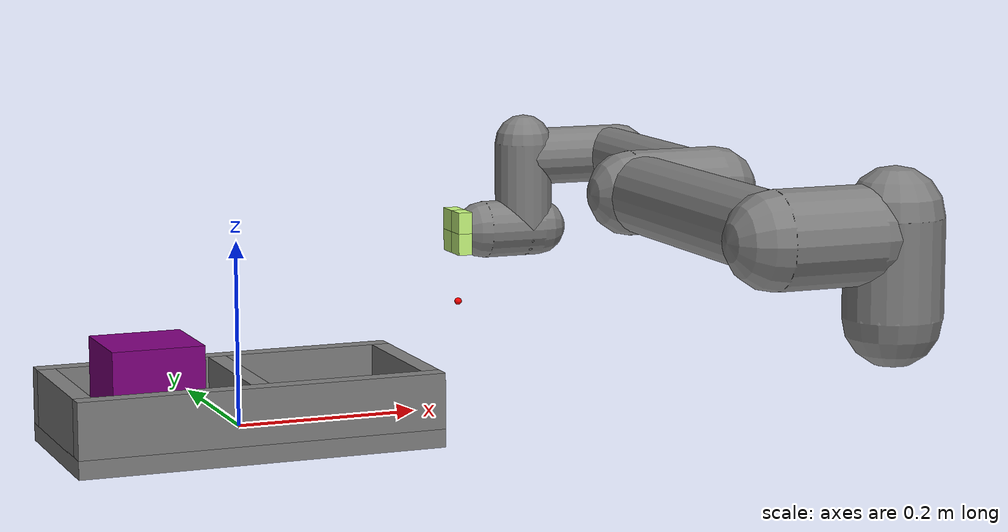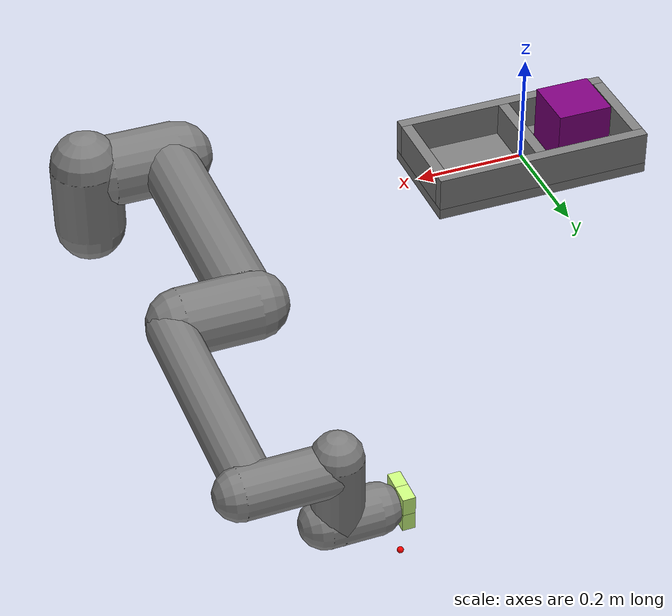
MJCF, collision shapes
<mujoco model="Active adhesion example">
  <!-- Adding some fluid viscosity to prevent the hanging components from jiggling too much -->
    <compiler angle="radian" meshdir="assets" autolimits="true"/>

  <option integrator="implicitfast"/>

  <default>
    <default class="ur5e">
      <material specular="0.5" shininess="0.25"/>
      <joint axis="0 1 0" range="-6.28319 6.28319" armature="0.1"/>
      <general gaintype="fixed" biastype="affine" ctrlrange="-6.2831 6.2831" gainprm="2000" biasprm="0 -2000 -400"
        forcerange="-150 150"/>
      <default class="size3">
        <default class="size3_limited">
          <joint range="-3.1415 3.1415"/>
          <general ctrlrange="-3.1415 3.1415"/>
        </default>
      </default>
      <default class="size1">
        <general gainprm="500" biasprm="0 -500 -100" forcerange="-28 28"/>
      </default>
      <default class="visual">
        <geom type="mesh" contype="0" conaffinity="0" group="2"/>
      </default>
      <default class="collision">
        <geom type="capsule" group="3"/>
        <default class="eef_collision">
          <geom type="cylinder"/>
        </default>
      </default>
      <site size="0.001" rgba="0.5 0.5 0.5 0.3" group="4"/>
    </default>
  </default>
  <asset>
    <material class="ur5e" name="black" rgba="0.033 0.033 0.033 1"/>
    <material class="ur5e" name="jointgray" rgba="0.278 0.278 0.278 1"/>
    <material class="ur5e" name="linkgray" rgba="0.82 0.82 0.82 1"/>
    <material class="ur5e" name="urblue" rgba="0.49 0.678 0.8 1"/>

    <mesh file="base_0.obj"/>
    <mesh file="base_1.obj"/>
    <mesh file="shoulder_0.obj"/>
    <mesh file="shoulder_1.obj"/>
    <mesh file="shoulder_2.obj"/>
    <mesh file="upperarm_0.obj"/>
    <mesh file="upperarm_1.obj"/>
    <mesh file="upperarm_2.obj"/>
    <mesh file="upperarm_3.obj"/>
    <mesh file="forearm_0.obj"/>
    <mesh file="forearm_1.obj"/>
    <mesh file="forearm_2.obj"/>
    <mesh file="forearm_3.obj"/>
    <mesh file="wrist1_0.obj"/>
    <mesh file="wrist1_1.obj"/>
    <mesh file="wrist1_2.obj"/>
    <mesh file="wrist2_0.obj"/>
    <mesh file="wrist2_1.obj"/>
    <mesh file="wrist2_2.obj"/>
    <mesh file="wrist3.obj"/>
  </asset>

  <option viscosity="1"/>
  <size memory="10M"/>

  <visual>
    <headlight diffuse=".2 .2 .2"/>
  </visual>

  <default>
    <joint damping=".3" axis="0 1 0"/>
    <geom type="box" friction=".5"/>
    <default class="wall">
      <geom rgba=".5 .5 .5 .4"/>
    </default>
    <default class="mechanical">
      <geom rgba=".5 .5 .8 1"/>
      <tendon rgba=".5 .5 .8 1"/>
    </default>
    <default class="active_adhesion">
      <geom rgba=".8 1 .5 1" margin=".01" gap=".01" size="3.4 3.4 3.4" />
    </default>
    <default class="object">
      <geom rgba=".5 0 .5 1" density="100"/>
    </default>
  </default>

  <worldbody>
    <light pos="0.4 -.15 .6" dir="-1 .5 -1" diffuse=".7 .7 .7"/>
    <light pos="-.4 -.15 .6" dir="1 .5 -1" diffuse=".7 .7 .7"/>

    <body name="two crates">
      <joint name="conveyor" type="slide" damping="100" axis="1 0 0"/>
      <geom size=".2 .1 .01" pos="0 0 -.01"/>
      <geom size=".01 .08 .031" pos="-.19 0 .03" class="wall"/>
      <geom size=".01 .08 .031" pos="0 0 .03" class="wall"/>
      <geom size=".01 .08 .031" pos="0.19 0 .03" class="wall"/>
      <geom size="0.2 .01 .031" pos="0 -.09 .03" class="wall"/>
      <geom size="0.2 .01 .031" pos="0 0.09 .03" class="wall"/>
    </body>

    <body name="base" pos="0.8 0 0" quat="1 0 0 1" childclass="ur5e">
      <inertial mass="4.0" pos="0 0 0" diaginertia="0.00443333156 0.00443333156 0.0072"/>
      <geom mesh="base_0" material="black" class="visual"/>
      <geom mesh="base_1" material="jointgray" class="visual"/>
      <body name="shoulder_link" pos="0 0 0.163">
        <inertial mass="3.7" pos="0 0 0" diaginertia="0.0102675 0.0102675 0.00666"/>
        <joint name="shoulder_pan_joint" class="size3" axis="0 0 1"/>
        <geom mesh="shoulder_0" material="urblue" class="visual"/>
        <geom mesh="shoulder_1" material="black" class="visual"/>
        <geom mesh="shoulder_2" material="jointgray" class="visual"/>
        <geom class="collision" size="0.06 0.06" pos="0 0 -0.04"/>
        <body name="upper_arm_link" pos="0 0.138 0" quat="1 0 1 0">
          <inertial mass="8.393" pos="0 0 0.2125" diaginertia="0.133886 0.133886 0.0151074"/>
          <joint name="shoulder_lift_joint" class="size3"/>
          <geom mesh="upperarm_0" material="linkgray" class="visual"/>
          <geom mesh="upperarm_1" material="black" class="visual"/>
          <geom mesh="upperarm_2" material="jointgray" class="visual"/>
          <geom mesh="upperarm_3" material="urblue" class="visual"/>
          <geom class="collision" pos="0 -0.04 0" quat="1 1 0 0" size="0.06 0.06"/>
          <geom class="collision" size="0.05 0.2" pos="0 0 0.2"/>
          <body name="forearm_link" pos="0 -0.131 0.425">
            <inertial mass="2.275" pos="0 0 0.196" diaginertia="0.0311796 0.0311796 0.004095"/>
            <joint name="elbow_joint" class="size3_limited"/>
            <geom mesh="forearm_0" material="urblue" class="visual"/>
            <geom mesh="forearm_1" material="linkgray" class="visual"/>
            <geom mesh="forearm_2" material="black" class="visual"/>
            <geom mesh="forearm_3" material="jointgray" class="visual"/>
            <geom class="collision" pos="0 0.08 0" quat="1 1 0 0" size="0.055 0.06"/>
            <geom class="collision" size="0.038 0.19" pos="0 0 0.2"/>
            <body name="wrist_1_link" pos="0 0 0.392" quat="1 0 1 0">
              <inertial mass="1.219" pos="0 0.127 0" diaginertia="0.0025599 0.0025599 0.0021942"/>
              <joint name="wrist_1_joint" class="size1"/>
              <geom mesh="wrist1_0" material="black" class="visual"/>
              <geom mesh="wrist1_1" material="urblue" class="visual"/>
              <geom mesh="wrist1_2" material="jointgray" class="visual"/>
              <geom class="collision" pos="0 0.05 0" quat="1 1 0 0" size="0.04 0.07"/>
              <body name="wrist_2_link" pos="0 0.127 0">
                <inertial mass="1.219" pos="0 0 0.1" diaginertia="0.0025599 0.0025599 0.0021942"/>
                <joint name="wrist_2_joint" axis="0 0 1" class="size1"/>
                <geom mesh="wrist2_0" material="black" class="visual"/>
                <geom mesh="wrist2_1" material="urblue" class="visual"/>
                <geom mesh="wrist2_2" material="jointgray" class="visual"/>
                <geom class="collision" size="0.04 0.06" pos="0 0 0.04"/>
                <geom class="collision" pos="0 0.02 0.1" quat="1 1 0 0" size="0.04 0.04"/>
                <body name="wrist_3_link" pos="0 0 0.1">
                  <inertial mass="0.1889" pos="0 0.0771683 0" quat="1 0 0 1"
                    diaginertia="0.000132134 9.90863e-05 9.90863e-05"/>
                  <joint name="wrist_3_joint" class="size1"/>
                  <geom material="linkgray" mesh="wrist3" class="visual"/>
                  <geom name="adhesion_gripper" type="sphere" size="0.001 0.0001 0.01" pos="0 0.08 0" priority="2" margin="0.01" gap="0.01" rgba="0.8 0.5 0.5 1"/>
                  <body name="4boxes" pos=".002 0.1 0" childclass="active_adhesion" quat="1 1 0 0">
                    <site name="force_sensor" group="3"/>
                    <joint name="arm3" damping=".01" pos="0 -.03 0"/>
                    <geom size=".015 .015 .01" pos="0.015 0.015 0"/>
                    <geom size=".015 .015 .01" pos="0.015 -.015 0"/>
                    <geom size=".015 .015 .01" pos="-.015 0.015 0"/>
                    <geom size=".015 .015 .01" pos="-.015 -.015 0"/>
                    <site name="attachment_site" pos="0 0.1 0" quat="1 0 0 0" rgba="1 0 0 1"/>
                    </body>

                </body>
              </body>
            </body>
          </body>
        </body>
      </body>
    </body>

    <body name="box" pos="-.1 0 .05">
      <freejoint/>
      <geom size=".05 .05 .05" class="object"/>
    </body>
  </worldbody>

  <actuator>
    <general class="size3" name="shoulder_pan" joint="shoulder_pan_joint"/>
    <general class="size3" name="shoulder_lift" joint="shoulder_lift_joint"/>
    <general class="size3_limited" name="elbow" joint="elbow_joint"/>
    <general class="size1" name="wrist_1" joint="wrist_1_joint"/>
    <general class="size1" name="wrist_2" joint="wrist_2_joint"/>
    <general class="size1" name="wrist_3" joint="wrist_3_joint"/>
    <position name="conveyor" joint="conveyor" ctrlrange="-.2 .2" ctrllimited="true" kp="400"/>
    <adhesion name="adhere_arm" body="4boxes" ctrlrange="0 1" gain="5"/>
  </actuator>

  <sensor>
    <force site="attachment_site"/>
  </sensor>
</mujoco>
